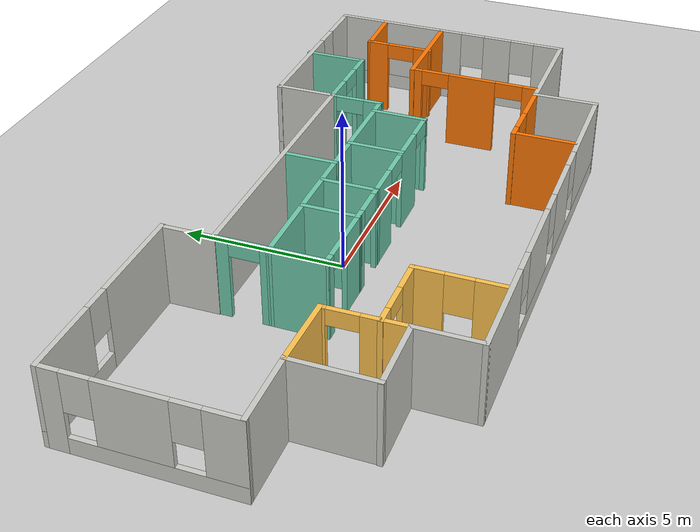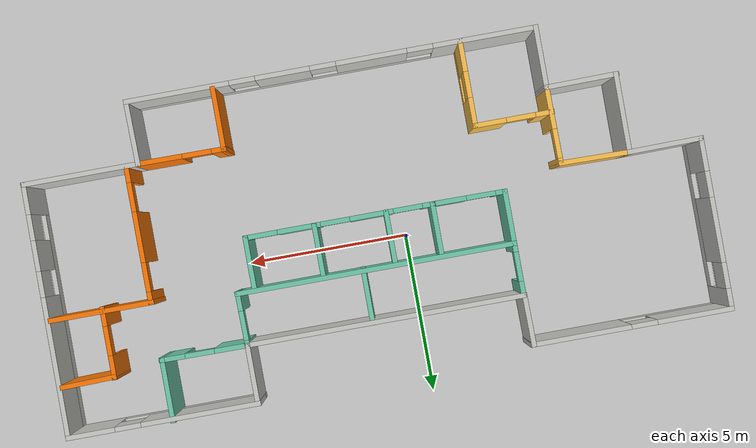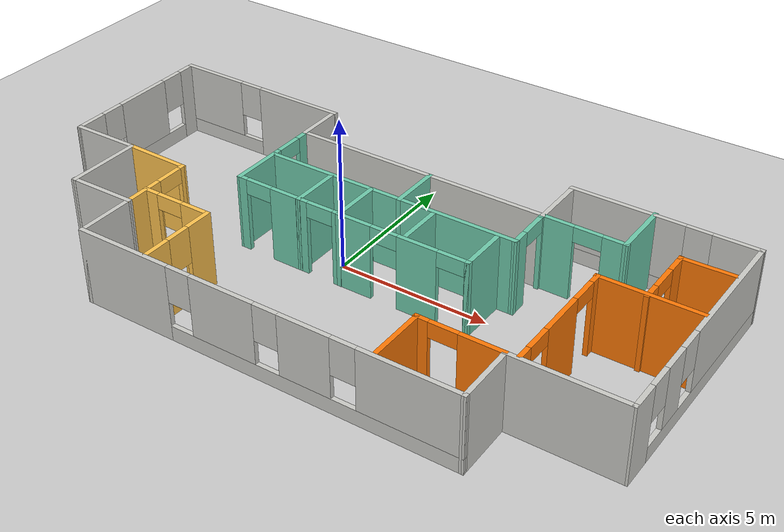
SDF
<sdf version="1.7">
 <world name="default">
  <model name="ground_plane">
   <static>1</static>
   <link name="link">
    <collision name="collision">
     <geometry><plane><normal>0 0 1</normal><size>100 100</size></plane></geometry>
     <surface>
      <contact><collide_bitmask>65535</collide_bitmask></contact>
      <friction><ode><mu>100</mu><mu2>50</mu2></ode></friction>
     </surface>
    </collision>
    <visual name="visual">
     <cast_shadows>0</cast_shadows>
     <geometry><plane><normal>0 0 1</normal><size>100 100</size></plane></geometry>
     <material>
      <script><uri>file://media/materials/scripts/gazebo.material</uri><name>Gazebo/Grey</name></script>
     </material>
    </visual>
   </link>
  </model>
  <model name="sweetHome">
   <pose>0.95206 -0.62895 0 0 -0 0</pose>
   <link name="Wall_1">
    <pose>-10.2246 1.88408 0 0 -0 -1.5708</pose>
    <visual name="Wall_1_Visual_0">
     <pose>-2.34402 0 1.25 0 -0 0</pose>
     <geometry><box><size>0.561956 0.15 2.5</size></box></geometry>
     <material>
      <script><uri>file://media/materials/scripts/gazebo.material</uri><name>Gazebo/CeilingTiled</name></script>
      <ambient>0.760784 0.662745 0.627451 1</ambient>
     </material>
     <meta><layer>0</layer></meta>
    </visual>
    <collision name="Wall_1_Collision_0">
     <geometry><box><size>0.561956 0.15 2.5</size></box></geometry>
     <pose>-2.34402 0 1.25 0 -0 0</pose>
    </collision>
    <visual name="Wall_1_Visual_1">
     <pose>0.280978 0 0.25 0 -0 0</pose>
     <geometry><box><size>4.68804 0.15 0.5</size></box></geometry>
     <material>
      <script><uri>file://media/materials/scripts/gazebo.material</uri><name>Gazebo/CeilingTiled</name></script>
      <ambient>0.760784 0.662745 0.627451 1</ambient>
     </material>
     <meta><layer>0</layer></meta>
    </visual>
    <collision name="Wall_1_Collision_1">
     <geometry><box><size>4.68804 0.15 0.5</size></box></geometry>
     <pose>0.280978 0 0.25 0 -0 0</pose>
    </collision>
    <visual name="Wall_1_Visual_2">
     <pose>-0.261194 0 1.5 0 -0 0</pose>
     <geometry><box><size>2.0037 0.15 2</size></box></geometry>
     <material>
      <script><uri>file://media/materials/scripts/gazebo.material</uri><name>Gazebo/CeilingTiled</name></script>
      <ambient>0.760784 0.662745 0.627451 1</ambient>
     </material>
     <meta><layer>0</layer></meta>
    </visual>
    <collision name="Wall_1_Collision_2">
     <geometry><box><size>2.0037 0.15 2</size></box></geometry>
     <pose>-0.261194 0 1.5 0 -0 0</pose>
    </collision>
    <visual name="Wall_1_Visual_3">
     <pose>2.08283 0 1.5 0 -0 0</pose>
     <geometry><box><size>1.08434 0.15 2</size></box></geometry>
     <material>
      <script><uri>file://media/materials/scripts/gazebo.material</uri><name>Gazebo/CeilingTiled</name></script>
      <ambient>0.760784 0.662745 0.627451 1</ambient>
     </material>
     <meta><layer>0</layer></meta>
    </visual>
    <collision name="Wall_1_Collision_3">
     <geometry><box><size>1.08434 0.15 2</size></box></geometry>
     <pose>2.08283 0 1.5 0 -0 0</pose>
    </collision>
    <visual name="Wall_1_Visual_4">
     <pose>-1.66304 0 1.9 0 -0 0</pose>
     <geometry><box><size>0.8 0.15 1.2</size></box></geometry>
     <material>
      <script><uri>file://media/materials/scripts/gazebo.material</uri><name>Gazebo/CeilingTiled</name></script>
      <ambient>0.760784 0.662745 0.627451 1</ambient>
     </material>
     <meta><layer>0</layer></meta>
    </visual>
    <collision name="Wall_1_Collision_4">
     <geometry><box><size>0.8 0.15 1.2</size></box></geometry>
     <pose>-1.66304 0 1.9 0 -0 0</pose>
    </collision>
    <visual name="Wall_1_Visual_5">
     <pose>1.14066 0 1.9 0 -0 0</pose>
     <geometry><box><size>0.8 0.15 1.2</size></box></geometry>
     <material>
      <script><uri>file://media/materials/scripts/gazebo.material</uri><name>Gazebo/CeilingTiled</name></script>
      <ambient>0.760784 0.662745 0.627451 1</ambient>
     </material>
     <meta><layer>0</layer></meta>
    </visual>
    <collision name="Wall_1_Collision_5">
     <geometry><box><size>0.8 0.15 1.2</size></box></geometry>
     <pose>1.14066 0 1.9 0 -0 0</pose>
    </collision>
   </link>
   <link name="Wall_10">
    <pose>7.29925 4.82446 0 0 -0 3.14159</pose>
    <visual name="Wall_10_Visual_0">
     <pose>-2.24505 0 1.25 0 -0 0</pose>
     <geometry><box><size>1.5099 0.15 2.5</size></box></geometry>
     <material>
      <script><uri>file://media/materials/scripts/gazebo.material</uri><name>Gazebo/CeilingTiled</name></script>
      <ambient>0.760784 0.662745 0.627451 1</ambient>
     </material>
     <meta><layer>0</layer></meta>
    </visual>
    <collision name="Wall_10_Collision_0">
     <geometry><box><size>1.5099 0.15 2.5</size></box></geometry>
     <pose>-2.24505 0 1.25 0 -0 0</pose>
    </collision>
    <visual name="Wall_10_Visual_1">
     <pose>0.754949 0 0.25 0 -0 0</pose>
     <geometry><box><size>4.4901 0.15 0.5</size></box></geometry>
     <material>
      <script><uri>file://media/materials/scripts/gazebo.material</uri><name>Gazebo/CeilingTiled</name></script>
      <ambient>0.760784 0.662745 0.627451 1</ambient>
     </material>
     <meta><layer>0</layer></meta>
    </visual>
    <collision name="Wall_10_Collision_1">
     <geometry><box><size>4.4901 0.15 0.5</size></box></geometry>
     <pose>0.754949 0 0.25 0 -0 0</pose>
    </collision>
    <visual name="Wall_10_Visual_2">
     <pose>1.15495 0 1.5 0 -0 0</pose>
     <geometry><box><size>3.6901 0.15 2</size></box></geometry>
     <material>
      <script><uri>file://media/materials/scripts/gazebo.material</uri><name>Gazebo/CeilingTiled</name></script>
      <ambient>0.760784 0.662745 0.627451 1</ambient>
     </material>
     <meta><layer>0</layer></meta>
    </visual>
    <collision name="Wall_10_Collision_2">
     <geometry><box><size>3.6901 0.15 2</size></box></geometry>
     <pose>1.15495 0 1.5 0 -0 0</pose>
    </collision>
    <visual name="Wall_10_Visual_3">
     <pose>-1.0901 0 1.9 0 -0 0</pose>
     <geometry><box><size>0.8 0.15 1.2</size></box></geometry>
     <material>
      <script><uri>file://media/materials/scripts/gazebo.material</uri><name>Gazebo/CeilingTiled</name></script>
      <ambient>0.760784 0.662745 0.627451 1</ambient>
     </material>
     <meta><layer>0</layer></meta>
    </visual>
    <collision name="Wall_10_Collision_3">
     <geometry><box><size>0.8 0.15 1.2</size></box></geometry>
     <pose>-1.0901 0 1.9 0 -0 0</pose>
    </collision>
   </link>
   <link name="Wall_11">
    <collision name="Wall_11_Collision">
     <geometry><box><size>1.94004 0.15 2.5</size></box></geometry>
     <pose>0 0 1.25 0 -0 0</pose>
    </collision>
    <visual name="Wall_11_Visual">
     <pose>0 0 1.25 0 -0 0</pose>
     <geometry><box><size>1.94004 0.15 2.5</size></box></geometry>
     <material>
      <script><uri>file://media/materials/scripts/gazebo.material</uri><name>Gazebo/CeilingTiled</name></script>
      <ambient>0.760784 0.662745 0.627451 1</ambient>
     </material>
     <meta><layer>0</layer></meta>
    </visual>
    <pose>4.393 3.92944 0 0 -0 -1.56939</pose>
   </link>
   <link name="Wall_12">
    <collision name="Wall_12_Collision">
     <geometry><box><size>8.64938 0.15 2.5</size></box></geometry>
     <pose>0 0 1.25 0 -0 0</pose>
    </collision>
    <visual name="Wall_12_Visual">
     <pose>0 0 1.25 0 -0 0</pose>
     <geometry><box><size>8.64938 0.15 2.5</size></box></geometry>
     <material>
      <script><uri>file://media/materials/scripts/gazebo.material</uri><name>Gazebo/CeilingTiled</name></script>
      <ambient>0.760784 0.662745 0.627451 1</ambient>
     </material>
     <meta><layer>0</layer></meta>
    </visual>
    <pose>0.144572 3.04219 0 0 -0 3.13976</pose>
   </link>
   <link name="Wall_13">
    <collision name="Wall_13_Collision">
     <geometry><box><size>1.66987 0.15 2.5</size></box></geometry>
     <pose>0 0 1.25 0 -0 0</pose>
    </collision>
    <visual name="Wall_13_Visual">
     <pose>0 0 1.25 0 -0 0</pose>
     <geometry><box><size>1.66987 0.15 2.5</size></box></geometry>
     <material>
      <script><uri>file://media/materials/scripts/gazebo.material</uri><name>Gazebo/CeilingTiled</name></script>
      <ambient>0.760784 0.662745 0.627451 1</ambient>
     </material>
     <meta><layer>0</layer></meta>
    </visual>
    <pose>-4.13315 3.80986 0 0 -0 1.58123</pose>
   </link>
   <link name="Wall_14">
    <pose>-7.17097 4.56975 0 0 -0 3.14159</pose>
    <visual name="Wall_14_Visual_0">
     <pose>-1.5746 0 1.25 0 -0 0</pose>
     <geometry><box><size>3.1008 0.15 2.5</size></box></geometry>
     <material>
      <script><uri>file://media/materials/scripts/gazebo.material</uri><name>Gazebo/CeilingTiled</name></script>
      <ambient>0.760784 0.662745 0.627451 1</ambient>
     </material>
     <meta><layer>0</layer></meta>
    </visual>
    <collision name="Wall_14_Collision_0">
     <geometry><box><size>3.1008 0.15 2.5</size></box></geometry>
     <pose>-1.5746 0 1.25 0 -0 0</pose>
    </collision>
    <visual name="Wall_14_Visual_1">
     <pose>1.5504 0 0.25 0 -0 0</pose>
     <geometry><box><size>3.1492 0.15 0.5</size></box></geometry>
     <material>
      <script><uri>file://media/materials/scripts/gazebo.material</uri><name>Gazebo/CeilingTiled</name></script>
      <ambient>0.760784 0.662745 0.627451 1</ambient>
     </material>
     <meta><layer>0</layer></meta>
    </visual>
    <collision name="Wall_14_Collision_1">
     <geometry><box><size>3.1492 0.15 0.5</size></box></geometry>
     <pose>1.5504 0 0.25 0 -0 0</pose>
    </collision>
    <visual name="Wall_14_Visual_2">
     <pose>1.9504 0 1.5 0 -0 0</pose>
     <geometry><box><size>2.3492 0.15 2</size></box></geometry>
     <material>
      <script><uri>file://media/materials/scripts/gazebo.material</uri><name>Gazebo/CeilingTiled</name></script>
      <ambient>0.760784 0.662745 0.627451 1</ambient>
     </material>
     <meta><layer>0</layer></meta>
    </visual>
    <collision name="Wall_14_Collision_2">
     <geometry><box><size>2.3492 0.15 2</size></box></geometry>
     <pose>1.9504 0 1.5 0 -0 0</pose>
    </collision>
    <visual name="Wall_14_Visual_3">
     <pose>0.375799 0 1.9 0 -0 0</pose>
     <geometry><box><size>0.8 0.15 1.2</size></box></geometry>
     <material>
      <script><uri>file://media/materials/scripts/gazebo.material</uri><name>Gazebo/CeilingTiled</name></script>
      <ambient>0.760784 0.662745 0.627451 1</ambient>
     </material>
     <meta><layer>0</layer></meta>
    </visual>
    <collision name="Wall_14_Collision_3">
     <geometry><box><size>0.8 0.15 1.2</size></box></geometry>
     <pose>0.375799 0 1.9 0 -0 0</pose>
    </collision>
   </link>
   <link name="Wall_2">
    <collision name="Wall_2_Collision">
     <geometry><box><size>2.32468 0.15 2.5</size></box></geometry>
     <pose>0 0 1.25 0 -0 0</pose>
    </collision>
    <visual name="Wall_2_Visual">
     <pose>0 0 1.25 0 -0 0</pose>
     <geometry><box><size>2.32468 0.15 2.5</size></box></geometry>
     <material>
      <script><uri>file://media/materials/scripts/gazebo.material</uri><name>Gazebo/CeilingTiled</name></script>
      <ambient>0.760784 0.662745 0.627451 1</ambient>
     </material>
     <meta><layer>0</layer></meta>
    </visual>
    <pose>-9.11715 -0.655861 0 0 -0 0.009249</pose>
   </link>
   <link name="Wall_21">
    <collision name="Wall_21_Collision">
     <geometry><box><size>2.25039 0.15 2.5</size></box></geometry>
     <pose>0 0 1.25 0 -0 0</pose>
    </collision>
    <visual name="Wall_21_Visual">
     <pose>0 0 1.25 0 -0 0</pose>
     <geometry><box><size>2.25039 0.15 2.5</size></box></geometry>
     <material>
      <script><uri>file://media/materials/scripts/gazebo.material</uri><name>Gazebo/Grey</name></script>
      <ambient>1 0.764706 0.305882 1</ambient>
     </material>
     <meta><layer>0</layer></meta>
    </visual>
    <pose>-6.9798 -0.665918 0 0 -0 -0.019153</pose>
   </link>
   <link name="Wall_23">
    <pose>-5.91975 -1.85097 0 0 -0 -1.56216</pose>
    <visual name="Wall_23_Visual_0">
     <pose>-1.12656 0 1.25 0 -0 0</pose>
     <geometry><box><size>0.226848 0.15 2.5</size></box></geometry>
     <material>
      <script><uri>file://media/materials/scripts/gazebo.material</uri><name>Gazebo/Grey</name></script>
      <ambient>1 0.764706 0.305882 1</ambient>
     </material>
     <meta><layer>0</layer></meta>
    </visual>
    <collision name="Wall_23_Collision_0">
     <geometry><box><size>0.226848 0.15 2.5</size></box></geometry>
     <pose>-1.12656 0 1.25 0 -0 0</pose>
    </collision>
    <visual name="Wall_23_Visual_1">
     <pose>0.563424 0 1.25 0 -0 0</pose>
     <geometry><box><size>1.35312 0.15 2.5</size></box></geometry>
     <material>
      <script><uri>file://media/materials/scripts/gazebo.material</uri><name>Gazebo/Grey</name></script>
      <ambient>1 0.764706 0.305882 1</ambient>
     </material>
     <meta><layer>0</layer></meta>
    </visual>
    <collision name="Wall_23_Collision_1">
     <geometry><box><size>1.35312 0.15 2.5</size></box></geometry>
     <pose>0.563424 0 1.25 0 -0 0</pose>
    </collision>
    <visual name="Wall_23_Visual_2">
     <pose>-0.563139 0 2.25 0 -0 0</pose>
     <geometry><box><size>0.9 0.15 0.5</size></box></geometry>
     <material>
      <script><uri>file://media/materials/scripts/gazebo.material</uri><name>Gazebo/Grey</name></script>
      <ambient>1 0.764706 0.305882 1</ambient>
     </material>
     <meta><layer>0</layer></meta>
    </visual>
    <collision name="Wall_23_Collision_2">
     <geometry><box><size>0.9 0.15 0.5</size></box></geometry>
     <pose>-0.563139 0 2.25 0 -0 0</pose>
    </collision>
   </link>
   <link name="Wall_25">
    <pose>-4.75775 -2.26176 0 0 -0 0</pose>
    <visual name="Wall_25_Visual_0">
     <pose>-0.962736 0 1.25 0 -0 0</pose>
     <geometry><box><size>0.574527 0.15 2.5</size></box></geometry>
     <material>
      <script><uri>file://media/materials/scripts/gazebo.material</uri><name>Gazebo/Grey</name></script>
      <ambient>1 0.764706 0.305882 1</ambient>
     </material>
     <meta><layer>0</layer></meta>
    </visual>
    <collision name="Wall_25_Collision_0">
     <geometry><box><size>0.574527 0.15 2.5</size></box></geometry>
     <pose>-0.962736 0 1.25 0 -0 0</pose>
    </collision>
    <visual name="Wall_25_Visual_1">
     <pose>0.737264 0 1.25 0 -0 0</pose>
     <geometry><box><size>1.02547 0.15 2.5</size></box></geometry>
     <material>
      <script><uri>file://media/materials/scripts/gazebo.material</uri><name>Gazebo/Grey</name></script>
      <ambient>1 0.764706 0.305882 1</ambient>
     </material>
     <meta><layer>0</layer></meta>
    </visual>
    <collision name="Wall_25_Collision_1">
     <geometry><box><size>1.02547 0.15 2.5</size></box></geometry>
     <pose>0.737264 0 1.25 0 -0 0</pose>
    </collision>
    <visual name="Wall_25_Visual_2">
     <pose>-0.225473 0 2.25 0 -0 0</pose>
     <geometry><box><size>0.9 0.15 0.5</size></box></geometry>
     <material>
      <script><uri>file://media/materials/scripts/gazebo.material</uri><name>Gazebo/Grey</name></script>
      <ambient>1 0.764706 0.305882 1</ambient>
     </material>
     <meta><layer>0</layer></meta>
    </visual>
    <collision name="Wall_25_Collision_2">
     <geometry><box><size>0.9 0.15 0.5</size></box></geometry>
     <pose>-0.225473 0 2.25 0 -0 0</pose>
    </collision>
   </link>
   <link name="Wall_26">
    <pose>-3.58275 -3.56176 0 0 -0 -1.5708</pose>
    <visual name="Wall_26_Visual_0">
     <pose>-0.904253 0 1.25 0 -0 0</pose>
     <geometry><box><size>0.941493 0.15 2.5</size></box></geometry>
     <material>
      <script><uri>file://media/materials/scripts/gazebo.material</uri><name>Gazebo/Grey</name></script>
      <ambient>1 0.764706 0.305882 1</ambient>
     </material>
     <meta><layer>0</layer></meta>
    </visual>
    <collision name="Wall_26_Collision_0">
     <geometry><box><size>0.941493 0.15 2.5</size></box></geometry>
     <pose>-0.904253 0 1.25 0 -0 0</pose>
    </collision>
    <visual name="Wall_26_Visual_1">
     <pose>0.470747 0 0.25 0 -0 0</pose>
     <geometry><box><size>1.80851 0.15 0.5</size></box></geometry>
     <material>
      <script><uri>file://media/materials/scripts/gazebo.material</uri><name>Gazebo/Grey</name></script>
      <ambient>1 0.764706 0.305882 1</ambient>
     </material>
     <meta><layer>0</layer></meta>
    </visual>
    <collision name="Wall_26_Collision_1">
     <geometry><box><size>1.80851 0.15 0.5</size></box></geometry>
     <pose>0.470747 0 0.25 0 -0 0</pose>
    </collision>
    <visual name="Wall_26_Visual_2">
     <pose>0.870747 0 1.5 0 -0 0</pose>
     <geometry><box><size>1.00851 0.15 2</size></box></geometry>
     <material>
      <script><uri>file://media/materials/scripts/gazebo.material</uri><name>Gazebo/Grey</name></script>
      <ambient>1 0.764706 0.305882 1</ambient>
     </material>
     <meta><layer>0</layer></meta>
    </visual>
    <collision name="Wall_26_Collision_2">
     <geometry><box><size>1.00851 0.15 2</size></box></geometry>
     <pose>0.870747 0 1.5 0 -0 0</pose>
    </collision>
    <visual name="Wall_26_Visual_3">
     <pose>-0.033507 0 1.9 0 -0 0</pose>
     <geometry><box><size>0.8 0.15 1.2</size></box></geometry>
     <material>
      <script><uri>file://media/materials/scripts/gazebo.material</uri><name>Gazebo/Grey</name></script>
      <ambient>1 0.764706 0.305882 1</ambient>
     </material>
     <meta><layer>0</layer></meta>
    </visual>
    <collision name="Wall_26_Collision_3">
     <geometry><box><size>0.8 0.15 1.2</size></box></geometry>
     <pose>-0.033507 0 1.9 0 -0 0</pose>
    </collision>
   </link>
   <link name="Wall_28">
    <pose>-4.10511 2.24996 0 0 -0 -1.5708</pose>
    <visual name="Wall_28_Visual_0">
     <pose>-0.618972 0 1.25 0 -0 0</pose>
     <geometry><box><size>0.512055 0.15 2.5</size></box></geometry>
     <material>
      <script><uri>file://media/materials/scripts/gazebo.material</uri><name>Gazebo/Grey</name></script>
      <ambient>0.435294 0.796078 0.67451 1</ambient>
     </material>
     <meta><layer>0</layer></meta>
    </visual>
    <collision name="Wall_28_Collision_0">
     <geometry><box><size>0.512055 0.15 2.5</size></box></geometry>
     <pose>-0.618972 0 1.25 0 -0 0</pose>
    </collision>
    <visual name="Wall_28_Visual_1">
     <pose>0.706028 0 1.25 0 -0 0</pose>
     <geometry><box><size>0.337945 0.15 2.5</size></box></geometry>
     <material>
      <script><uri>file://media/materials/scripts/gazebo.material</uri><name>Gazebo/Grey</name></script>
      <ambient>0.435294 0.796078 0.67451 1</ambient>
     </material>
     <meta><layer>0</layer></meta>
    </visual>
    <collision name="Wall_28_Collision_1">
     <geometry><box><size>0.337945 0.15 2.5</size></box></geometry>
     <pose>0.706028 0 1.25 0 -0 0</pose>
    </collision>
    <visual name="Wall_28_Visual_2">
     <pose>0.087055 0 2.25 0 -0 0</pose>
     <geometry><box><size>0.9 0.15 0.5</size></box></geometry>
     <material>
      <script><uri>file://media/materials/scripts/gazebo.material</uri><name>Gazebo/Grey</name></script>
      <ambient>0.435294 0.796078 0.67451 1</ambient>
     </material>
     <meta><layer>0</layer></meta>
    </visual>
    <collision name="Wall_28_Collision_2">
     <geometry><box><size>0.9 0.15 0.5</size></box></geometry>
     <pose>0.087055 0 2.25 0 -0 0</pose>
    </collision>
   </link>
   <link name="Wall_29">
    <collision name="Wall_29_Collision">
     <geometry><box><size>8.67077 0.15 2.5</size></box></geometry>
     <pose>0 0 1.25 0 -0 0</pose>
    </collision>
    <visual name="Wall_29_Visual">
     <pose>0 0 1.25 0 -0 0</pose>
     <geometry><box><size>8.67077 0.15 2.5</size></box></geometry>
     <material>
      <script><uri>file://media/materials/scripts/gazebo.material</uri><name>Gazebo/Grey</name></script>
      <ambient>0.435294 0.796078 0.67451 1</ambient>
     </material>
     <meta><layer>0</layer></meta>
    </visual>
    <pose>0.155275 1.45141 0 0 -0 0.000339</pose>
   </link>
   <link name="Wall_3">
    <collision name="Wall_3_Collision">
     <geometry><box><size>2.52014 0.15 2.5</size></box></geometry>
     <pose>0 0 1.25 0 -0 0</pose>
    </collision>
    <visual name="Wall_3_Visual">
     <pose>0 0 1.25 0 -0 0</pose>
     <geometry><box><size>2.52014 0.15 2.5</size></box></geometry>
     <material>
      <script><uri>file://media/materials/scripts/gazebo.material</uri><name>Gazebo/CeilingTiled</name></script>
      <ambient>0.760784 0.662745 0.627451 1</ambient>
     </material>
     <meta><layer>0</layer></meta>
    </visual>
    <pose>-8.03554 -1.85097 0 0 -0 -1.57564</pose>
   </link>
   <link name="Wall_30">
    <pose>4.39496 2.24364 0 0 -0 1.58433</pose>
    <visual name="Wall_30_Visual_0">
     <pose>-0.563086 0 1.25 0 -0 0</pose>
     <geometry><box><size>0.605546 0.15 2.5</size></box></geometry>
     <material>
      <script><uri>file://media/materials/scripts/gazebo.material</uri><name>Gazebo/Grey</name></script>
      <ambient>0.435294 0.796078 0.67451 1</ambient>
     </material>
     <meta><layer>0</layer></meta>
    </visual>
    <collision name="Wall_30_Collision_0">
     <geometry><box><size>0.605546 0.15 2.5</size></box></geometry>
     <pose>-0.563086 0 1.25 0 -0 0</pose>
    </collision>
    <visual name="Wall_30_Visual_1">
     <pose>0.752773 0 1.25 0 -0 0</pose>
     <geometry><box><size>0.226171 0.15 2.5</size></box></geometry>
     <material>
      <script><uri>file://media/materials/scripts/gazebo.material</uri><name>Gazebo/Grey</name></script>
      <ambient>0.435294 0.796078 0.67451 1</ambient>
     </material>
     <meta><layer>0</layer></meta>
    </visual>
    <collision name="Wall_30_Collision_1">
     <geometry><box><size>0.226171 0.15 2.5</size></box></geometry>
     <pose>0.752773 0 1.25 0 -0 0</pose>
    </collision>
    <visual name="Wall_30_Visual_2">
     <pose>0.189687 0 2.25 0 -0 0</pose>
     <geometry><box><size>0.9 0.15 0.5</size></box></geometry>
     <material>
      <script><uri>file://media/materials/scripts/gazebo.material</uri><name>Gazebo/Grey</name></script>
      <ambient>0.435294 0.796078 0.67451 1</ambient>
     </material>
     <meta><layer>0</layer></meta>
    </visual>
    <collision name="Wall_30_Collision_2">
     <geometry><box><size>0.9 0.15 0.5</size></box></geometry>
     <pose>0.189687 0 2.25 0 -0 0</pose>
    </collision>
   </link>
   <link name="Wall_32">
    <collision name="Wall_32_Collision">
     <geometry><box><size>1.75 0.15 2.5</size></box></geometry>
     <pose>0 0 1.25 0 -0 0</pose>
    </collision>
    <visual name="Wall_32_Visual">
     <pose>0 0 1.25 0 -0 0</pose>
     <geometry><box><size>1.75 0.15 2.5</size></box></geometry>
     <material>
      <script><uri>file://media/materials/scripts/gazebo.material</uri><name>Gazebo/Grey</name></script>
      <ambient>0.435294 0.796078 0.67451 1</ambient>
     </material>
     <meta><layer>0</layer></meta>
    </visual>
    <pose>0.53458 2.2428 0 0 -0 -1.5708</pose>
   </link>
   <link name="Wall_36">
    <pose>5.70639 3.02568 0 0 -0 -0.006614</pose>
    <visual name="Wall_36_Visual_0">
     <pose>-0.849808 0 1.25 0 -0 0</pose>
     <geometry><box><size>1.09471 0.15 2.5</size></box></geometry>
     <material>
      <script><uri>file://media/materials/scripts/gazebo.material</uri><name>Gazebo/Grey</name></script>
      <ambient>0.435294 0.796078 0.67451 1</ambient>
     </material>
     <meta><layer>0</layer></meta>
    </visual>
    <collision name="Wall_36_Collision_0">
     <geometry><box><size>1.09471 0.15 2.5</size></box></geometry>
     <pose>-0.849808 0 1.25 0 -0 0</pose>
    </collision>
    <visual name="Wall_36_Visual_1">
     <pose>0.997353 0 1.25 0 -0 0</pose>
     <geometry><box><size>0.799616 0.15 2.5</size></box></geometry>
     <material>
      <script><uri>file://media/materials/scripts/gazebo.material</uri><name>Gazebo/Grey</name></script>
      <ambient>0.435294 0.796078 0.67451 1</ambient>
     </material>
     <meta><layer>0</layer></meta>
    </visual>
    <collision name="Wall_36_Collision_1">
     <geometry><box><size>0.799616 0.15 2.5</size></box></geometry>
     <pose>0.997353 0 1.25 0 -0 0</pose>
    </collision>
    <visual name="Wall_36_Visual_2">
     <pose>0.147546 0 2.25 0 -0 0</pose>
     <geometry><box><size>0.9 0.15 0.5</size></box></geometry>
     <material>
      <script><uri>file://media/materials/scripts/gazebo.material</uri><name>Gazebo/Grey</name></script>
      <ambient>0.435294 0.796078 0.67451 1</ambient>
     </material>
     <meta><layer>0</layer></meta>
    </visual>
    <collision name="Wall_36_Collision_2">
     <geometry><box><size>0.9 0.15 0.5</size></box></geometry>
     <pose>0.147546 0 2.25 0 -0 0</pose>
    </collision>
   </link>
   <link name="Wall_37">
    <collision name="Wall_37_Collision">
     <geometry><box><size>2 0.15 2.5</size></box></geometry>
     <pose>0 0 1.25 0 -0 0</pose>
    </collision>
    <visual name="Wall_37_Visual">
     <pose>0 0 1.25 0 -0 0</pose>
     <geometry><box><size>2 0.15 2.5</size></box></geometry>
     <material>
      <script><uri>file://media/materials/scripts/gazebo.material</uri><name>Gazebo/Grey</name></script>
      <ambient>0.435294 0.796078 0.67451 1</ambient>
     </material>
     <meta><layer>0</layer></meta>
    </visual>
    <pose>7.01103 3.94193 0 0 -0 1.5708</pose>
   </link>
   <link name="Wall_4">
    <collision name="Wall_4_Collision">
     <geometry><box><size>2.3018 0.15 2.5</size></box></geometry>
     <pose>0 0 1.25 0 -0 0</pose>
    </collision>
    <visual name="Wall_4_Visual">
     <pose>0 0 1.25 0 -0 0</pose>
     <geometry><box><size>2.3018 0.15 2.5</size></box></geometry>
     <material>
      <script><uri>file://media/materials/scripts/gazebo.material</uri><name>Gazebo/CeilingTiled</name></script>
      <ambient>0.760784 0.662745 0.627451 1</ambient>
     </material>
     <meta><layer>0</layer></meta>
    </visual>
    <pose>-6.98554 -3.02597 0 0 -0 0.009347</pose>
   </link>
   <link name="Wall_40">
    <collision name="Wall_40_Collision">
     <geometry><box><size>2 0.15 2.5</size></box></geometry>
     <pose>0 0 1.25 0 -0 0</pose>
    </collision>
    <visual name="Wall_40_Visual">
     <pose>0 0 1.25 0 -0 0</pose>
     <geometry><box><size>2 0.15 2.5</size></box></geometry>
     <material>
      <script><uri>file://media/materials/scripts/gazebo.material</uri><name>Gazebo/Grey</name></script>
      <ambient>0.996078 0.47451 0.0196078 1</ambient>
     </material>
     <meta><layer>0</layer></meta>
    </visual>
    <pose>4.03391 -3.85788 0 0 -0 1.5708</pose>
   </link>
   <link name="Wall_41">
    <pose>5.33391 -2.94294 0 0 -0 -0.007618</pose>
    <visual name="Wall_41_Visual_0">
     <pose>-1.15923 0 1.25 0 -0 0</pose>
     <geometry><box><size>0.471849 0.15 2.5</size></box></geometry>
     <material>
      <script><uri>file://media/materials/scripts/gazebo.material</uri><name>Gazebo/Grey</name></script>
      <ambient>0.996078 0.47451 0.0196078 1</ambient>
     </material>
     <meta><layer>0</layer></meta>
    </visual>
    <collision name="Wall_41_Collision_0">
     <geometry><box><size>0.471849 0.15 2.5</size></box></geometry>
     <pose>-1.15923 0 1.25 0 -0 0</pose>
    </collision>
    <visual name="Wall_41_Visual_1">
     <pose>0.685925 0 1.25 0 -0 0</pose>
     <geometry><box><size>1.41846 0.15 2.5</size></box></geometry>
     <material>
      <script><uri>file://media/materials/scripts/gazebo.material</uri><name>Gazebo/Grey</name></script>
      <ambient>0.996078 0.47451 0.0196078 1</ambient>
     </material>
     <meta><layer>0</layer></meta>
    </visual>
    <collision name="Wall_41_Collision_1">
     <geometry><box><size>1.41846 0.15 2.5</size></box></geometry>
     <pose>0.685925 0 1.25 0 -0 0</pose>
    </collision>
    <visual name="Wall_41_Visual_2">
     <pose>-0.473303 0 2.25 0 -0 0</pose>
     <geometry><box><size>0.9 0.15 0.5</size></box></geometry>
     <material>
      <script><uri>file://media/materials/scripts/gazebo.material</uri><name>Gazebo/Grey</name></script>
      <ambient>0.996078 0.47451 0.0196078 1</ambient>
     </material>
     <meta><layer>0</layer></meta>
    </visual>
    <collision name="Wall_41_Collision_2">
     <geometry><box><size>0.9 0.15 0.5</size></box></geometry>
     <pose>-0.473303 0 2.25 0 -0 0</pose>
    </collision>
   </link>
   <link name="Wall_43">
    <pose>7.03294 -0.810944 0 0 -0 1.5708</pose>
    <visual name="Wall_43_Visual_0">
     <pose>-1.88266 0 1.25 0 -0 0</pose>
     <geometry><box><size>0.484677 0.15 2.5</size></box></geometry>
     <material>
      <script><uri>file://media/materials/scripts/gazebo.material</uri><name>Gazebo/Grey</name></script>
      <ambient>0.996078 0.47451 0.0196078 1</ambient>
     </material>
     <meta><layer>0</layer></meta>
    </visual>
    <collision name="Wall_43_Collision_0">
     <geometry><box><size>0.484677 0.15 2.5</size></box></geometry>
     <pose>-1.88266 0 1.25 0 -0 0</pose>
    </collision>
    <visual name="Wall_43_Visual_1">
     <pose>0.039677 0 1.25 0 -0 0</pose>
     <geometry><box><size>1.56 0.15 2.5</size></box></geometry>
     <material>
      <script><uri>file://media/materials/scripts/gazebo.material</uri><name>Gazebo/Grey</name></script>
      <ambient>0.996078 0.47451 0.0196078 1</ambient>
     </material>
     <meta><layer>0</layer></meta>
    </visual>
    <collision name="Wall_43_Collision_1">
     <geometry><box><size>1.56 0.15 2.5</size></box></geometry>
     <pose>0.039677 0 1.25 0 -0 0</pose>
    </collision>
    <visual name="Wall_43_Visual_2">
     <pose>1.92234 0 1.25 0 -0 0</pose>
     <geometry><box><size>0.405323 0.15 2.5</size></box></geometry>
     <material>
      <script><uri>file://media/materials/scripts/gazebo.material</uri><name>Gazebo/Grey</name></script>
      <ambient>0.996078 0.47451 0.0196078 1</ambient>
     </material>
     <meta><layer>0</layer></meta>
    </visual>
    <collision name="Wall_43_Collision_2">
     <geometry><box><size>0.405323 0.15 2.5</size></box></geometry>
     <pose>1.92234 0 1.25 0 -0 0</pose>
    </collision>
    <visual name="Wall_43_Visual_3">
     <pose>-1.19032 0 2.25 0 -0 0</pose>
     <geometry><box><size>0.9 0.15 0.5</size></box></geometry>
     <material>
      <script><uri>file://media/materials/scripts/gazebo.material</uri><name>Gazebo/Grey</name></script>
      <ambient>0.996078 0.47451 0.0196078 1</ambient>
     </material>
     <meta><layer>0</layer></meta>
    </visual>
    <collision name="Wall_43_Collision_3">
     <geometry><box><size>0.9 0.15 0.5</size></box></geometry>
     <pose>-1.19032 0 2.25 0 -0 0</pose>
    </collision>
    <visual name="Wall_43_Visual_4">
     <pose>1.26968 0 2.25 0 -0 0</pose>
     <geometry><box><size>0.9 0.15 0.5</size></box></geometry>
     <material>
      <script><uri>file://media/materials/scripts/gazebo.material</uri><name>Gazebo/Grey</name></script>
      <ambient>0.996078 0.47451 0.0196078 1</ambient>
     </material>
     <meta><layer>0</layer></meta>
    </visual>
    <collision name="Wall_43_Collision_4">
     <geometry><box><size>0.9 0.15 0.5</size></box></geometry>
     <pose>1.26968 0 2.25 0 -0 0</pose>
    </collision>
   </link>
   <link name="Wall_44">
    <collision name="Wall_44_Collision">
     <geometry><box><size>3.25 0.15 2.5</size></box></geometry>
     <pose>0 0 1.25 0 -0 0</pose>
    </collision>
    <visual name="Wall_44_Visual">
     <pose>0 0 1.25 0 -0 0</pose>
     <geometry><box><size>3.25 0.15 2.5</size></box></geometry>
     <material>
      <script><uri>file://media/materials/scripts/gazebo.material</uri><name>Gazebo/Grey</name></script>
      <ambient>0.996078 0.47451 0.0196078 1</ambient>
     </material>
     <meta><layer>0</layer></meta>
    </visual>
    <pose>8.5598 1.23906 0 0 -0 0</pose>
   </link>
   <link name="Wall_46">
    <pose>8.51859 2.22157 0 0 -0 1.5708</pose>
    <visual name="Wall_46_Visual_0">
     <pose>-0.822334 0 1.25 0 -0 0</pose>
     <geometry><box><size>0.605333 0.15 2.5</size></box></geometry>
     <material>
      <script><uri>file://media/materials/scripts/gazebo.material</uri><name>Gazebo/Grey</name></script>
      <ambient>0.996078 0.47451 0.0196078 1</ambient>
     </material>
     <meta><layer>0</layer></meta>
    </visual>
    <collision name="Wall_46_Collision_0">
     <geometry><box><size>0.605333 0.15 2.5</size></box></geometry>
     <pose>-0.822334 0 1.25 0 -0 0</pose>
    </collision>
    <visual name="Wall_46_Visual_1">
     <pose>0.752666 0 1.25 0 -0 0</pose>
     <geometry><box><size>0.744667 0.15 2.5</size></box></geometry>
     <material>
      <script><uri>file://media/materials/scripts/gazebo.material</uri><name>Gazebo/Grey</name></script>
      <ambient>0.996078 0.47451 0.0196078 1</ambient>
     </material>
     <meta><layer>0</layer></meta>
    </visual>
    <collision name="Wall_46_Collision_1">
     <geometry><box><size>0.744667 0.15 2.5</size></box></geometry>
     <pose>0.752666 0 1.25 0 -0 0</pose>
    </collision>
    <visual name="Wall_46_Visual_2">
     <pose>-0.069667 0 2.25 0 -0 0</pose>
     <geometry><box><size>0.9 0.15 0.5</size></box></geometry>
     <material>
      <script><uri>file://media/materials/scripts/gazebo.material</uri><name>Gazebo/Grey</name></script>
      <ambient>0.996078 0.47451 0.0196078 1</ambient>
     </material>
     <meta><layer>0</layer></meta>
    </visual>
    <collision name="Wall_46_Collision_2">
     <geometry><box><size>0.9 0.15 0.5</size></box></geometry>
     <pose>-0.069667 0 2.25 0 -0 0</pose>
    </collision>
   </link>
   <link name="Wall_47">
    <collision name="Wall_47_Collision">
     <geometry><box><size>1.75 0.15 2.5</size></box></geometry>
     <pose>0 0 1.25 0 -0 0</pose>
    </collision>
    <visual name="Wall_47_Visual">
     <pose>0 0 1.25 0 -0 0</pose>
     <geometry><box><size>1.75 0.15 2.5</size></box></geometry>
     <material>
      <script><uri>file://media/materials/scripts/gazebo.material</uri><name>Gazebo/Grey</name></script>
      <ambient>0.996078 0.47451 0.0196078 1</ambient>
     </material>
     <meta><layer>0</layer></meta>
    </visual>
    <pose>9.31859 3.27157 0 0 -0 0.021859</pose>
   </link>
   <link name="Wall_49">
    <collision name="Wall_49_Collision">
     <geometry><box><size>1.75 0.15 2.5</size></box></geometry>
     <pose>0 0 1.25 0 -0 0</pose>
    </collision>
    <visual name="Wall_49_Visual">
     <pose>0 0 1.25 0 -0 0</pose>
     <geometry><box><size>1.75 0.15 2.5</size></box></geometry>
     <material>
      <script><uri>file://media/materials/scripts/gazebo.material</uri><name>Gazebo/Grey</name></script>
      <ambient>0.435294 0.796078 0.67451 1</ambient>
     </material>
     <meta><layer>0</layer></meta>
    </visual>
    <pose>-1.88542 0.632795 0 0 -0 -1.5708</pose>
   </link>
   <link name="Wall_5">
    <collision name="Wall_5_Collision">
     <geometry><box><size>2 0.15 2.5</size></box></geometry>
     <pose>0 0 1.25 0 -0 0</pose>
    </collision>
    <visual name="Wall_5_Visual">
     <pose>0 0 1.25 0 -0 0</pose>
     <geometry><box><size>2 0.15 2.5</size></box></geometry>
     <material>
      <script><uri>file://media/materials/scripts/gazebo.material</uri><name>Gazebo/CeilingTiled</name></script>
      <ambient>1 0.764706 0.305882 1</ambient>
     </material>
     <meta><layer>0</layer></meta>
    </visual>
    <pose>-5.90969 -3.94092 0 0 -0 -1.5708</pose>
   </link>
   <link name="Wall_50">
    <pose>0.98958 -0.167205 0 0 -0 0</pose>
    <visual name="Wall_50_Visual_0">
     <pose>-2.7625 0 1.25 0 -0 0</pose>
     <geometry><box><size>0.395 0.15 2.5</size></box></geometry>
     <material>
      <script><uri>file://media/materials/scripts/gazebo.material</uri><name>Gazebo/Grey</name></script>
      <ambient>0.435294 0.796078 0.67451 1</ambient>
     </material>
     <meta><layer>0</layer></meta>
    </visual>
    <collision name="Wall_50_Collision_0">
     <geometry><box><size>0.395 0.15 2.5</size></box></geometry>
     <pose>-2.7625 0 1.25 0 -0 0</pose>
    </collision>
    <visual name="Wall_50_Visual_1">
     <pose>-0.995 0 1.25 0 -0 0</pose>
     <geometry><box><size>1.34 0.15 2.5</size></box></geometry>
     <material>
      <script><uri>file://media/materials/scripts/gazebo.material</uri><name>Gazebo/Grey</name></script>
      <ambient>0.435294 0.796078 0.67451 1</ambient>
     </material>
     <meta><layer>0</layer></meta>
    </visual>
    <collision name="Wall_50_Collision_1">
     <geometry><box><size>1.34 0.15 2.5</size></box></geometry>
     <pose>-0.995 0 1.25 0 -0 0</pose>
    </collision>
    <visual name="Wall_50_Visual_2">
     <pose>1.23694 0 1.25 0 -0 0</pose>
     <geometry><box><size>1.32389 0.15 2.5</size></box></geometry>
     <material>
      <script><uri>file://media/materials/scripts/gazebo.material</uri><name>Gazebo/Grey</name></script>
      <ambient>0.435294 0.796078 0.67451 1</ambient>
     </material>
     <meta><layer>0</layer></meta>
    </visual>
    <collision name="Wall_50_Collision_2">
     <geometry><box><size>1.32389 0.15 2.5</size></box></geometry>
     <pose>1.23694 0 1.25 0 -0 0</pose>
    </collision>
    <visual name="Wall_50_Visual_3">
     <pose>2.87945 0 1.25 0 -0 0</pose>
     <geometry><box><size>0.16111 0.15 2.5</size></box></geometry>
     <material>
      <script><uri>file://media/materials/scripts/gazebo.material</uri><name>Gazebo/Grey</name></script>
      <ambient>0.435294 0.796078 0.67451 1</ambient>
     </material>
     <meta><layer>0</layer></meta>
    </visual>
    <collision name="Wall_50_Collision_3">
     <geometry><box><size>0.16111 0.15 2.5</size></box></geometry>
     <pose>2.87945 0 1.25 0 -0 0</pose>
    </collision>
    <visual name="Wall_50_Visual_4">
     <pose>-2.115 0 2.25 0 -0 0</pose>
     <geometry><box><size>0.9 0.15 0.5</size></box></geometry>
     <material>
      <script><uri>file://media/materials/scripts/gazebo.material</uri><name>Gazebo/Grey</name></script>
      <ambient>0.435294 0.796078 0.67451 1</ambient>
     </material>
     <meta><layer>0</layer></meta>
    </visual>
    <collision name="Wall_50_Collision_4">
     <geometry><box><size>0.9 0.15 0.5</size></box></geometry>
     <pose>-2.115 0 2.25 0 -0 0</pose>
    </collision>
    <visual name="Wall_50_Visual_5">
     <pose>0.125 0 2.25 0 -0 0</pose>
     <geometry><box><size>0.9 0.15 0.5</size></box></geometry>
     <material>
      <script><uri>file://media/materials/scripts/gazebo.material</uri><name>Gazebo/Grey</name></script>
      <ambient>0.435294 0.796078 0.67451 1</ambient>
     </material>
     <meta><layer>0</layer></meta>
    </visual>
    <collision name="Wall_50_Collision_5">
     <geometry><box><size>0.9 0.15 0.5</size></box></geometry>
     <pose>0.125 0 2.25 0 -0 0</pose>
    </collision>
    <visual name="Wall_50_Visual_6">
     <pose>2.34889 0 2.25 0 -0 0</pose>
     <geometry><box><size>0.9 0.15 0.5</size></box></geometry>
     <material>
      <script><uri>file://media/materials/scripts/gazebo.material</uri><name>Gazebo/Grey</name></script>
      <ambient>0.435294 0.796078 0.67451 1</ambient>
     </material>
     <meta><layer>0</layer></meta>
    </visual>
    <collision name="Wall_50_Collision_6">
     <geometry><box><size>0.9 0.15 0.5</size></box></geometry>
     <pose>2.34889 0 2.25 0 -0 0</pose>
    </collision>
   </link>
   <link name="Wall_51">
    <collision name="Wall_51_Collision">
     <geometry><box><size>1.75 0.15 2.5</size></box></geometry>
     <pose>0 0 1.25 0 -0 0</pose>
    </collision>
    <visual name="Wall_51_Visual">
     <pose>0 0 1.25 0 -0 0</pose>
     <geometry><box><size>1.75 0.15 2.5</size></box></geometry>
     <material>
      <script><uri>file://media/materials/scripts/gazebo.material</uri><name>Gazebo/Grey</name></script>
      <ambient>0.435294 0.796078 0.67451 1</ambient>
     </material>
     <meta><layer>0</layer></meta>
    </visual>
    <pose>3.87458 0.632795 0 0 -0 1.5708</pose>
   </link>
   <link name="Wall_54">
    <collision name="Wall_54_Collision">
     <geometry><box><size>1.75 0.15 2.5</size></box></geometry>
     <pose>0 0 1.25 0 -0 0</pose>
    </collision>
    <visual name="Wall_54_Visual">
     <pose>0 0 1.25 0 -0 0</pose>
     <geometry><box><size>1.75 0.15 2.5</size></box></geometry>
     <material>
      <script><uri>file://media/materials/scripts/gazebo.material</uri><name>Gazebo/Grey</name></script>
      <ambient>0.435294 0.796078 0.67451 1</ambient>
     </material>
     <meta><layer>0</layer></meta>
    </visual>
    <pose>-0.45542 0.622795 0 0 -0 1.5708</pose>
   </link>
   <link name="Wall_56">
    <collision name="Wall_56_Collision">
     <geometry><box><size>1.75 0.15 2.5</size></box></geometry>
     <pose>0 0 1.25 0 -0 0</pose>
    </collision>
    <visual name="Wall_56_Visual">
     <pose>0 0 1.25 0 -0 0</pose>
     <geometry><box><size>1.75 0.15 2.5</size></box></geometry>
     <material>
      <script><uri>file://media/materials/scripts/gazebo.material</uri><name>Gazebo/Grey</name></script>
      <ambient>0.435294 0.796078 0.67451 1</ambient>
     </material>
     <meta><layer>0</layer></meta>
    </visual>
    <pose>1.75458 0.642795 0 0 -0 1.5708</pose>
   </link>
   <link name="Wall_58">
    <collision name="Wall_58_Collision">
     <geometry><box><size>1.75 0.15 2.5</size></box></geometry>
     <pose>0 0 1.25 0 -0 0</pose>
    </collision>
    <visual name="Wall_58_Visual">
     <pose>0 0 1.25 0 -0 0</pose>
     <geometry><box><size>1.75 0.15 2.5</size></box></geometry>
     <material>
      <script><uri>file://media/materials/scripts/gazebo.material</uri><name>Gazebo/Grey</name></script>
      <ambient>0.435294 0.796078 0.67451 1</ambient>
     </material>
     <meta><layer>0</layer></meta>
    </visual>
    <pose>-4.10511 0.649964 0 0 -0 -1.5708</pose>
   </link>
   <link name="Wall_59">
    <pose>-3.00027 -0.15862 0 0 -0 -0.00777</pose>
    <visual name="Wall_59_Visual_0">
     <pose>-0.999333 0 1.25 0 -0 0</pose>
     <geometry><box><size>0.361091 0.15 2.5</size></box></geometry>
     <material>
      <script><uri>file://media/materials/scripts/gazebo.material</uri><name>Gazebo/Grey</name></script>
      <ambient>0.435294 0.796078 0.67451 1</ambient>
     </material>
     <meta><layer>0</layer></meta>
    </visual>
    <collision name="Wall_59_Collision_0">
     <geometry><box><size>0.361091 0.15 2.5</size></box></geometry>
     <pose>-0.999333 0 1.25 0 -0 0</pose>
    </collision>
    <visual name="Wall_59_Visual_1">
     <pose>0.630546 0 1.25 0 -0 0</pose>
     <geometry><box><size>1.09867 0.15 2.5</size></box></geometry>
     <material>
      <script><uri>file://media/materials/scripts/gazebo.material</uri><name>Gazebo/Grey</name></script>
      <ambient>0.435294 0.796078 0.67451 1</ambient>
     </material>
     <meta><layer>0</layer></meta>
    </visual>
    <collision name="Wall_59_Collision_1">
     <geometry><box><size>1.09867 0.15 2.5</size></box></geometry>
     <pose>0.630546 0 1.25 0 -0 0</pose>
    </collision>
    <visual name="Wall_59_Visual_2">
     <pose>-0.368787 0 2.25 0 -0 0</pose>
     <geometry><box><size>0.9 0.15 0.5</size></box></geometry>
     <material>
      <script><uri>file://media/materials/scripts/gazebo.material</uri><name>Gazebo/Grey</name></script>
      <ambient>0.435294 0.796078 0.67451 1</ambient>
     </material>
     <meta><layer>0</layer></meta>
    </visual>
    <collision name="Wall_59_Collision_2">
     <geometry><box><size>0.9 0.15 0.5</size></box></geometry>
     <pose>-0.368787 0 2.25 0 -0 0</pose>
    </collision>
   </link>
   <link name="Wall_6">
    <pose>0.390308 -4.86592 0 0 -0 0</pose>
    <visual name="Wall_6_Visual_0">
     <pose>-4.75733 0 1.25 0 -0 0</pose>
     <geometry><box><size>3.23535 0.15 2.5</size></box></geometry>
     <material>
      <script><uri>file://media/materials/scripts/gazebo.material</uri><name>Gazebo/CeilingTiled</name></script>
      <ambient>0.760784 0.662745 0.627451 1</ambient>
     </material>
     <meta><layer>0</layer></meta>
    </visual>
    <collision name="Wall_6_Collision_0">
     <geometry><box><size>3.23535 0.15 2.5</size></box></geometry>
     <pose>-4.75733 0 1.25 0 -0 0</pose>
    </collision>
    <visual name="Wall_6_Visual_1">
     <pose>1.61767 0 0.25 0 -0 0</pose>
     <geometry><box><size>9.51465 0.15 0.5</size></box></geometry>
     <material>
      <script><uri>file://media/materials/scripts/gazebo.material</uri><name>Gazebo/CeilingTiled</name></script>
      <ambient>0.760784 0.662745 0.627451 1</ambient>
     </material>
     <meta><layer>0</layer></meta>
    </visual>
    <collision name="Wall_6_Collision_1">
     <geometry><box><size>9.51465 0.15 0.5</size></box></geometry>
     <pose>1.61767 0 0.25 0 -0 0</pose>
    </collision>
    <visual name="Wall_6_Visual_2">
     <pose>-1.24523 0 1.5 0 -0 0</pose>
     <geometry><box><size>2.18885 0.15 2</size></box></geometry>
     <material>
      <script><uri>file://media/materials/scripts/gazebo.material</uri><name>Gazebo/CeilingTiled</name></script>
      <ambient>0.760784 0.662745 0.627451 1</ambient>
     </material>
     <meta><layer>0</layer></meta>
    </visual>
    <collision name="Wall_6_Collision_2">
     <geometry><box><size>2.18885 0.15 2</size></box></geometry>
     <pose>-1.24523 0 1.5 0 -0 0</pose>
    </collision>
    <visual name="Wall_6_Visual_3">
     <pose>1.49235 0 1.5 0 -0 0</pose>
     <geometry><box><size>1.6863 0.15 2</size></box></geometry>
     <material>
      <script><uri>file://media/materials/scripts/gazebo.material</uri><name>Gazebo/CeilingTiled</name></script>
      <ambient>0.760784 0.662745 0.627451 1</ambient>
     </material>
     <meta><layer>0</layer></meta>
    </visual>
    <collision name="Wall_6_Collision_3">
     <geometry><box><size>1.6863 0.15 2</size></box></geometry>
     <pose>1.49235 0 1.5 0 -0 0</pose>
    </collision>
    <visual name="Wall_6_Visual_4">
     <pose>4.75525 0 1.5 0 -0 0</pose>
     <geometry><box><size>3.2395 0.15 2</size></box></geometry>
     <material>
      <script><uri>file://media/materials/scripts/gazebo.material</uri><name>Gazebo/CeilingTiled</name></script>
      <ambient>0.760784 0.662745 0.627451 1</ambient>
     </material>
     <meta><layer>0</layer></meta>
    </visual>
    <collision name="Wall_6_Collision_4">
     <geometry><box><size>3.2395 0.15 2</size></box></geometry>
     <pose>4.75525 0 1.5 0 -0 0</pose>
    </collision>
    <visual name="Wall_6_Visual_5">
     <pose>-2.73965 0 1.9 0 -0 0</pose>
     <geometry><box><size>0.8 0.15 1.2</size></box></geometry>
     <material>
      <script><uri>file://media/materials/scripts/gazebo.material</uri><name>Gazebo/CeilingTiled</name></script>
      <ambient>0.760784 0.662745 0.627451 1</ambient>
     </material>
     <meta><layer>0</layer></meta>
    </visual>
    <collision name="Wall_6_Collision_5">
     <geometry><box><size>0.8 0.15 1.2</size></box></geometry>
     <pose>-2.73965 0 1.9 0 -0 0</pose>
    </collision>
    <visual name="Wall_6_Visual_6">
     <pose>0.249197 0 1.9 0 -0 0</pose>
     <geometry><box><size>0.8 0.15 1.2</size></box></geometry>
     <material>
      <script><uri>file://media/materials/scripts/gazebo.material</uri><name>Gazebo/CeilingTiled</name></script>
      <ambient>0.760784 0.662745 0.627451 1</ambient>
     </material>
     <meta><layer>0</layer></meta>
    </visual>
    <collision name="Wall_6_Collision_6">
     <geometry><box><size>0.8 0.15 1.2</size></box></geometry>
     <pose>0.249197 0 1.9 0 -0 0</pose>
    </collision>
    <visual name="Wall_6_Visual_7">
     <pose>2.7355 0 1.9 0 -0 0</pose>
     <geometry><box><size>0.8 0.15 1.2</size></box></geometry>
     <material>
      <script><uri>file://media/materials/scripts/gazebo.material</uri><name>Gazebo/CeilingTiled</name></script>
      <ambient>0.760784 0.662745 0.627451 1</ambient>
     </material>
     <meta><layer>0</layer></meta>
    </visual>
    <collision name="Wall_6_Collision_7">
     <geometry><box><size>0.8 0.15 1.2</size></box></geometry>
     <pose>2.7355 0 1.9 0 -0 0</pose>
    </collision>
   </link>
   <link name="Wall_7">
    <collision name="Wall_7_Collision">
     <geometry><box><size>2.06052 0.15 2.5</size></box></geometry>
     <pose>0 0 1.25 0 -0 0</pose>
    </collision>
    <visual name="Wall_7_Visual">
     <pose>0 0 1.25 0 -0 0</pose>
     <geometry><box><size>2.06052 0.15 2.5</size></box></geometry>
     <material>
      <script><uri>file://media/materials/scripts/gazebo.material</uri><name>Gazebo/CeilingTiled</name></script>
      <ambient>0.760784 0.662745 0.627451 1</ambient>
     </material>
     <meta><layer>0</layer></meta>
    </visual>
    <pose>6.67728 -3.91075 0 0 -0 1.58443</pose>
   </link>
   <link name="Wall_8">
    <collision name="Wall_8_Collision">
     <geometry><box><size>3.65653 0.15 2.5</size></box></geometry>
     <pose>0 0 1.25 0 -0 0</pose>
    </collision>
    <visual name="Wall_8_Visual">
     <pose>0 0 1.25 0 -0 0</pose>
     <geometry><box><size>3.65653 0.15 2.5</size></box></geometry>
     <material>
      <script><uri>file://media/materials/scripts/gazebo.material</uri><name>Gazebo/CeilingTiled</name></script>
      <ambient>0.760784 0.662745 0.627451 1</ambient>
     </material>
     <meta><layer>0</layer></meta>
    </visual>
    <pose>8.41752 -2.95558 0 0 -0 0</pose>
   </link>
   <link name="Wall_9">
    <pose>10.2063 0.934443 0 0 -0 1.56617</pose>
    <visual name="Wall_9_Visual_0">
     <pose>-3.46841 0 1.25 0 -0 0</pose>
     <geometry><box><size>0.993304 0.15 2.5</size></box></geometry>
     <material>
      <script><uri>file://media/materials/scripts/gazebo.material</uri><name>Gazebo/CeilingTiled</name></script>
      <ambient>0.760784 0.662745 0.627451 1</ambient>
     </material>
     <meta><layer>0</layer></meta>
    </visual>
    <collision name="Wall_9_Collision_0">
     <geometry><box><size>0.993304 0.15 2.5</size></box></geometry>
     <pose>-3.46841 0 1.25 0 -0 0</pose>
    </collision>
    <visual name="Wall_9_Visual_1">
     <pose>0.496652 0 0.25 0 -0 0</pose>
     <geometry><box><size>6.93682 0.15 0.5</size></box></geometry>
     <material>
      <script><uri>file://media/materials/scripts/gazebo.material</uri><name>Gazebo/CeilingTiled</name></script>
      <ambient>0.760784 0.662745 0.627451 1</ambient>
     </material>
     <meta><layer>0</layer></meta>
    </visual>
    <collision name="Wall_9_Collision_1">
     <geometry><box><size>6.93682 0.15 0.5</size></box></geometry>
     <pose>0.496652 0 0.25 0 -0 0</pose>
    </collision>
    <visual name="Wall_9_Visual_2">
     <pose>-1.69895 0 1.5 0 -0 0</pose>
     <geometry><box><size>0.94562 0.15 2</size></box></geometry>
     <material>
      <script><uri>file://media/materials/scripts/gazebo.material</uri><name>Gazebo/CeilingTiled</name></script>
      <ambient>0.760784 0.662745 0.627451 1</ambient>
     </material>
     <meta><layer>0</layer></meta>
    </visual>
    <collision name="Wall_9_Collision_2">
     <geometry><box><size>0.94562 0.15 2</size></box></geometry>
     <pose>-1.69895 0 1.5 0 -0 0</pose>
    </collision>
    <visual name="Wall_9_Visual_3">
     <pose>1.76946 0 1.5 0 -0 0</pose>
     <geometry><box><size>4.3912 0.15 2</size></box></geometry>
     <material>
      <script><uri>file://media/materials/scripts/gazebo.material</uri><name>Gazebo/CeilingTiled</name></script>
      <ambient>0.760784 0.662745 0.627451 1</ambient>
     </material>
     <meta><layer>0</layer></meta>
    </visual>
    <collision name="Wall_9_Collision_3">
     <geometry><box><size>4.3912 0.15 2</size></box></geometry>
     <pose>1.76946 0 1.5 0 -0 0</pose>
    </collision>
    <visual name="Wall_9_Visual_4">
     <pose>-2.57176 0 1.9 0 -0 0</pose>
     <geometry><box><size>0.8 0.15 1.2</size></box></geometry>
     <material>
      <script><uri>file://media/materials/scripts/gazebo.material</uri><name>Gazebo/CeilingTiled</name></script>
      <ambient>0.760784 0.662745 0.627451 1</ambient>
     </material>
     <meta><layer>0</layer></meta>
    </visual>
    <collision name="Wall_9_Collision_4">
     <geometry><box><size>0.8 0.15 1.2</size></box></geometry>
     <pose>-2.57176 0 1.9 0 -0 0</pose>
    </collision>
    <visual name="Wall_9_Visual_5">
     <pose>-0.826137 0 1.9 0 -0 0</pose>
     <geometry><box><size>0.8 0.15 1.2</size></box></geometry>
     <material>
      <script><uri>file://media/materials/scripts/gazebo.material</uri><name>Gazebo/CeilingTiled</name></script>
      <ambient>0.760784 0.662745 0.627451 1</ambient>
     </material>
     <meta><layer>0</layer></meta>
    </visual>
    <collision name="Wall_9_Collision_5">
     <geometry><box><size>0.8 0.15 1.2</size></box></geometry>
     <pose>-0.826137 0 1.9 0 -0 0</pose>
    </collision>
   </link>
   <static>1</static>
  </model>
 </world>
</sdf>
